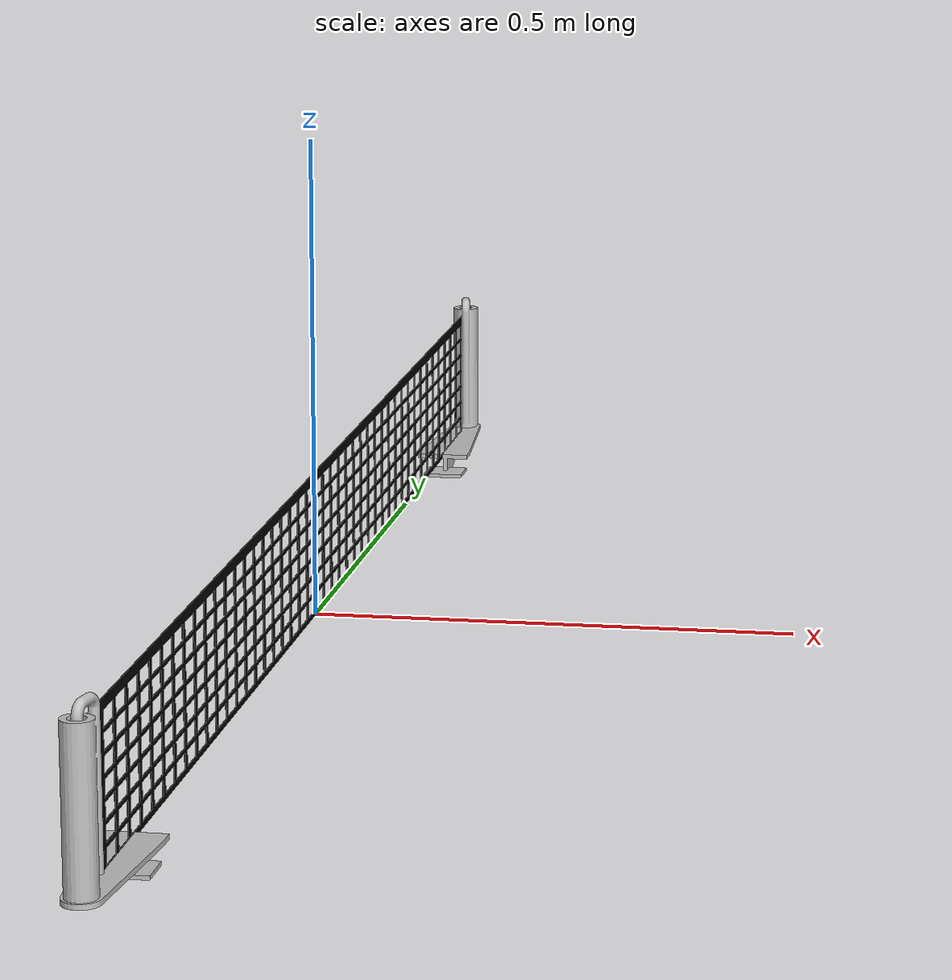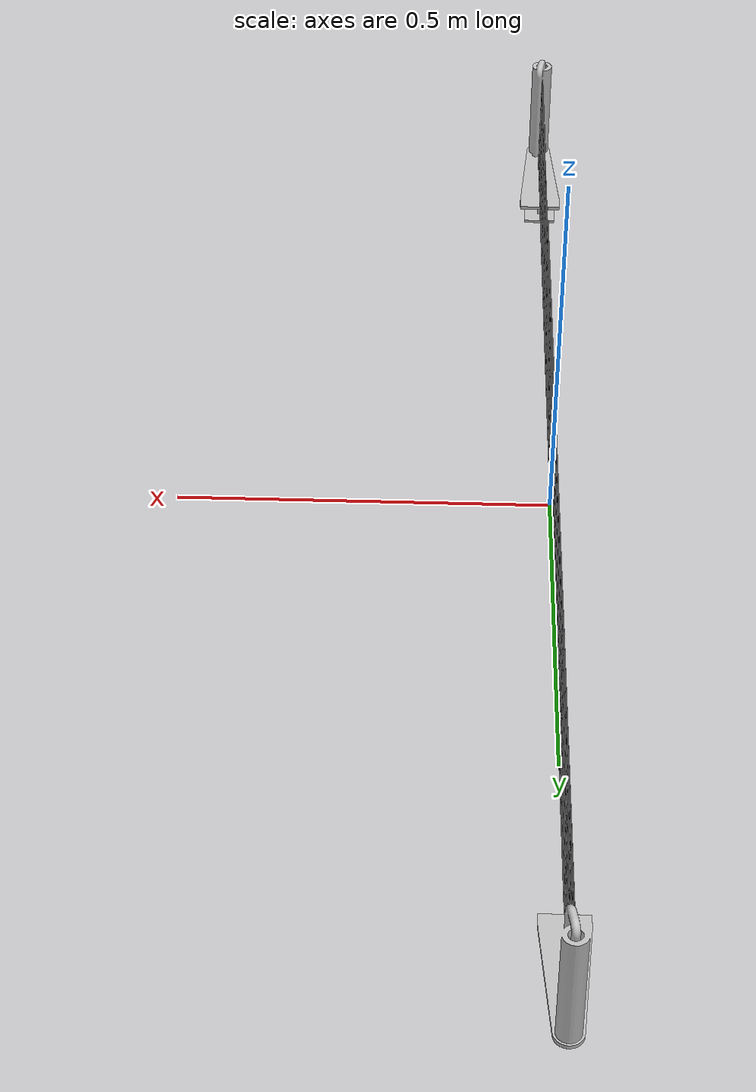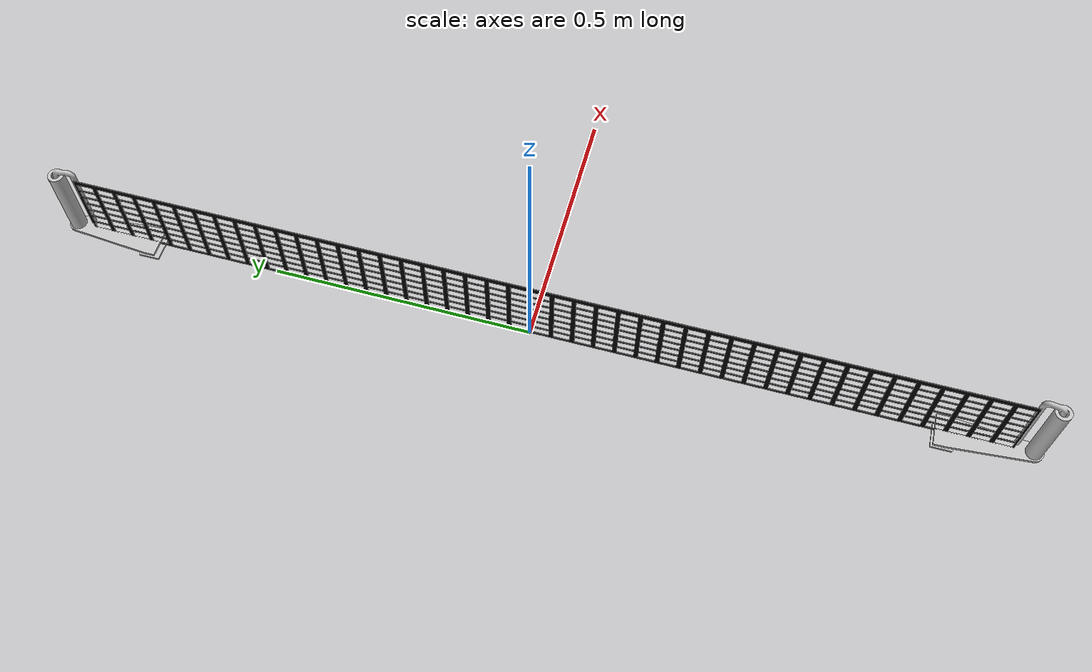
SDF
<?xml version='1.0'?>
<sdf version="1.4">
  <model name="ping_pong_table_net">
    <pose>0 0 0  0 0 0</pose>
    <static>true</static>
    <link name="body">
      <visual name='visual'>
        <geometry>
          <mesh>
            <uri>file://models/ping_pong_table_net/meshes/net.dae</uri>
          </mesh>
        </geometry>
      </visual>
      <collision name="net_collision">
        <pose frame=''>0 0 .07625 0 0 0</pose>
        <geometry>
          <box>
            <size>.001 1.76 .1525</size>
          </box>
        </geometry>
        <surface>
          <bounce>
            <restitution_coefficient>0.2</restitution_coefficient>
            <threshold>0</threshold>
          </bounce>
          <friction>
            <ode>
              <mu>0.01</mu>
              <mu2>0.01</mu2>
            </ode>
          </friction>
          <contact>
            <ode>
              <max_vel>10</max_vel>
            </ode>
          </contact>
        </surface>
      </collision>

      <sensor name="net_contact" type="contact">
        <contact>
          <collision>net_collision</collision>
        </contact>
      </sensor>
    </link>
  </model>
</sdf>
